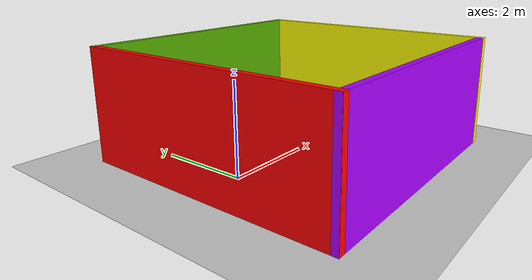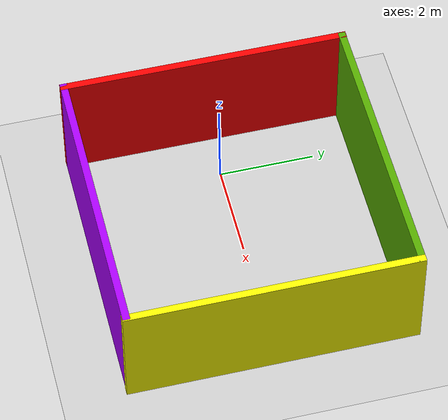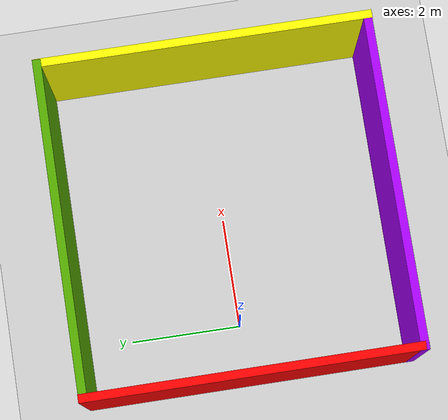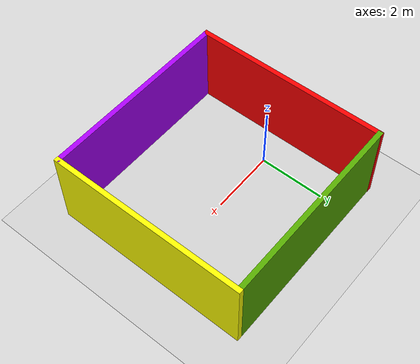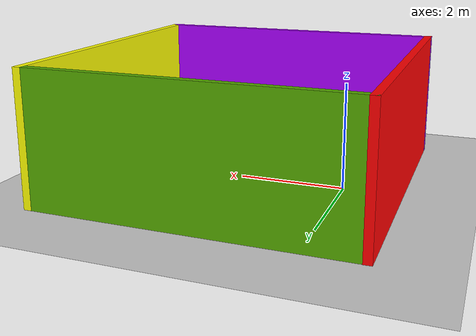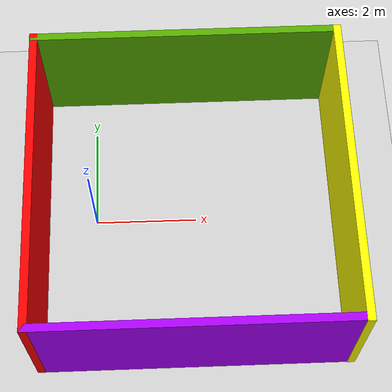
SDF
<sdf version="1.6">
 <world name="default">
  <light name="sun" type="directional">
   <pose>0 0 10 0 -0 0</pose>
   <diffuse>0.8 0.8 0.8 1</diffuse>
   <specular>0.1 0.1 0.1 1</specular>
   <attenuation>
    <range>1000</range>
    <constant>0.9</constant>
    <linear>0.01</linear>
    <quadratic>0.001</quadratic>
   </attenuation>
   <direction>-0.5 0.5 -1</direction>
  </light>
  <model name="ground_plane">
   <static>1</static>
   <link name="link">
    <collision name="collision">
     <geometry><plane><normal>0 0 1</normal><size>100 100</size></plane></geometry>
     <surface><friction><ode><mu>100</mu><mu2>50</mu2></ode></friction></surface>
    </collision>
    <visual name="visual">
     <cast_shadows>0</cast_shadows>
     <geometry><plane><normal>0 0 1</normal><size>100 100</size></plane></geometry>
     <material>
      <script><uri>file://media/materials/scripts/gazebo.material</uri><name>Gazebo/Grey</name></script>
     </material>
    </visual>
   </link>
  </model>
  <gravity>0 0 -9.8</gravity>
  <magnetic_field>6e-06 2.3e-05 -4.2e-05</magnetic_field>
  <atmosphere type="adiabatic"/>
  <physics name="default_physics" default="0" type="ode">
   <max_step_size>0.01</max_step_size>
   <real_time_factor>1</real_time_factor>
   <real_time_update_rate>500</real_time_update_rate>
  </physics>
  <scene><ambient>0.4 0.4 0.4 1</ambient><background>0.7 0.7 0.7 1</background><shadows>0</shadows></scene>
  <spherical_coordinates>
   <surface_model>EARTH_WGS84</surface_model>
   <latitude_deg>0</latitude_deg>
   <longitude_deg>0</longitude_deg>
   <elevation>0</elevation>
   <heading_deg>0</heading_deg>
  </spherical_coordinates>
  <model name="large_4walls">
   <pose>1.89765 -0.072736 0 0 -0 0</pose>
   <link name="Wall_0">
    <collision name="Wall_0_Collision">
     <geometry><box><size>6 0.15 2.5</size></box></geometry>
     <pose>0 0 1.25 0 -0 0</pose>
    </collision>
    <visual name="Wall_0_Visual">
     <pose>0 0 1.25 0 -0 0</pose>
     <geometry><box><size>6 0.15 2.5</size></box></geometry>
     <material>
      <script><uri>file://media/materials/scripts/gazebo.material</uri><name>Gazebo/Grey</name></script>
      <ambient>1 0 0 1</ambient>
     </material>
    </visual>
    <pose>-2.93695 0.003137 0 0 0 -1.5708</pose>
   </link>
   <link name="Wall_2">
    <collision name="Wall_2_Collision">
     <geometry><box><size>6 0.15 2.5</size></box></geometry>
     <pose>0 0 1.25 0 -0 0</pose>
    </collision>
    <visual name="Wall_2_Visual">
     <pose>0 0 1.25 0 -0 0</pose>
     <geometry><box><size>6 0.15 2.5</size></box></geometry>
     <material>
      <script><uri>file://media/materials/scripts/gazebo.material</uri><name>Gazebo/Grey</name></script>
      <ambient>0.666667 0 1 1</ambient>
     </material>
    </visual>
    <pose>-0.013331 -2.91982 0 0 -0 0</pose>
   </link>
   <link name="Wall_4">
    <collision name="Wall_4_Collision">
     <geometry><box><size>6 0.15 2.5</size></box></geometry>
     <pose>0 0 1.25 0 -0 0</pose>
    </collision>
    <visual name="Wall_4_Visual">
     <pose>0 0 1.25 0 -0 0</pose>
     <geometry><box><size>6 0.15 2.5</size></box></geometry>
     <material>
      <script><uri>file://media/materials/scripts/gazebo.material</uri><name>Gazebo/Grey</name></script>
      <ambient>1 1 0 1</ambient>
     </material>
    </visual>
    <pose>2.93833 -0.003137 0 0 0 -1.5708</pose>
   </link>
   <link name="Wall_6">
    <collision name="Wall_6_Collision">
     <geometry><box><size>6 0.15 2.5</size></box></geometry>
     <pose>0 0 1.25 0 -0 0</pose>
    </collision>
    <visual name="Wall_6_Visual">
     <pose>0 0 1.25 0 -0 0</pose>
     <geometry><box><size>6 0.15 2.5</size></box></geometry>
     <material>
      <script><uri>file://media/materials/scripts/gazebo.material</uri><name>Gazebo/Grey</name></script>
      <ambient>0.333333 0.666667 0 1</ambient>
     </material>
    </visual>
    <pose>0.004159 2.92186 0 0 -0 0</pose>
   </link>
   <static>1</static>
  </model>
 </world>
</sdf>
